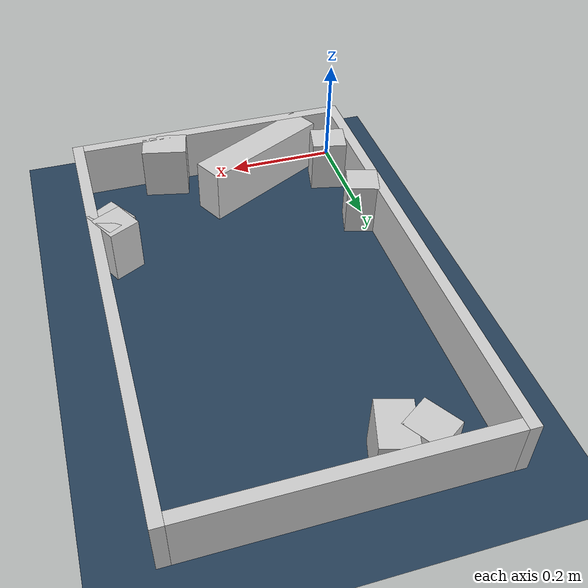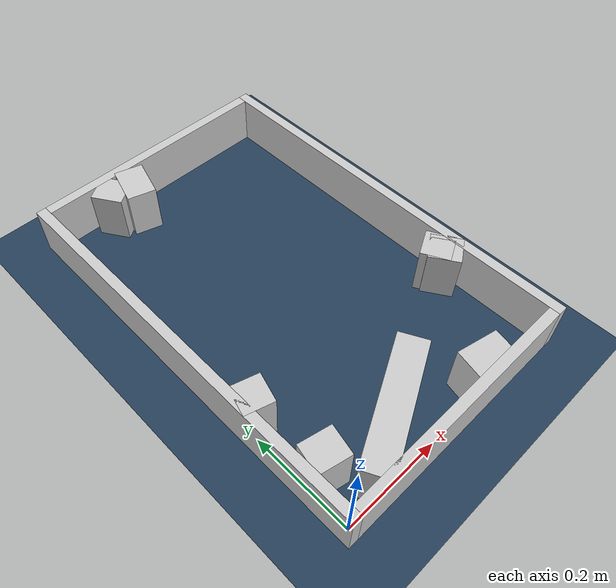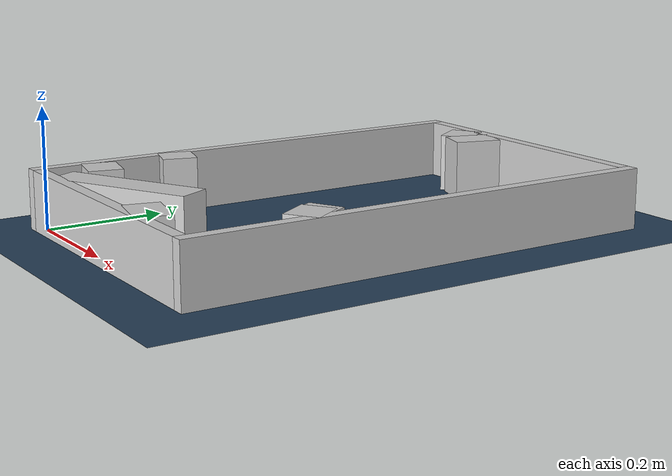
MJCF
<?xml version="1.0" ?>
<mujoco model="generated_real_template">
  <compiler angle="degree"/>
  <option timestep="0.002" integrator="implicitfast" iterations="100" cone="elliptic"/>
  <default>
    <geom density="1"/>
  </default>
  <asset>
    <texture builtin="gradient" height="3072" rgb1="0.3 0.5 0.7" rgb2="0 0 0" type="skybox" width="512"/>
    <texture builtin="checker" height="300" mark="edge" markrgb="0.8 0.8 0.8" name="groundplane" rgb1="0.2 0.3 0.4" rgb2="0.1 0.2 0.3" type="2d" width="300"/>
    <material name="groundplane" reflectance="0.2" texrepeat="5 5" texture="groundplane" texuniform="true"/>
  </asset>
  <worldbody>
    <light dir="0 0 -1" directional="true" pos="0 0 1.5"/>
    <geom name="floor" type="plane" condim="4" friction="0.5 0.005 0.001" material="groundplane" size="0 0 0.05"/>
    <body name="walls">
      <geom name="wall_boundary_left" type="box" condim="4" friction="1.0 0.005 0.0001" rgba="0.8 0.8 0.8 1" pos="-0.010000 0.387500 0.050000" euler="0 0 0.000000" size="0.010000 0.407500 0.050000"/>
      <geom name="wall_boundary_right" type="box" condim="4" friction="1.0 0.005 0.0001" rgba="0.8 0.8 0.8 1" pos="0.500000 0.387500 0.050000" euler="0 0 0.000000" size="0.010000 0.407500 0.050000"/>
      <geom name="wall_boundary_bottom" type="box" condim="4" friction="1.0 0.005 0.0001" rgba="0.8 0.8 0.8 1" pos="0.245000 -0.010000 0.050000" euler="0 0 0.000000" size="0.245000 0.010000 0.050000"/>
      <geom name="wall_boundary_top" type="box" condim="4" friction="1.0 0.005 0.0001" rgba="0.8 0.8 0.8 1" pos="0.245000 0.785000 0.050000" euler="0 0 0.000000" size="0.245000 0.010000 0.050000"/>
      <geom name="wall_inner_1_1" type="box" condim="4" friction="1.0 0.005 0.0001" rgba="0.8 0.8 0.8 1" pos="0.469273 0.204352 0.050000" euler="0 0 122.770243" size="0.030967 0.028500 0.050000"/>
      <geom name="wall_inner_1_2" type="box" condim="4" friction="1.0 0.005 0.0001" rgba="0.8 0.8 0.8 1" pos="0.118821 0.748768 0.050000" euler="0 0 122.770243" size="0.031197 0.028500 0.050000"/>
      <geom name="wall_inner_2_1" type="box" condim="4" friction="1.0 0.005 0.0001" rgba="0.8 0.8 0.8 1" pos="0.167939 0.063651 0.050000" euler="0 0 27.512018" size="0.126366 0.028500 0.050000"/>
      <geom name="wall_inner_2_2" type="box" condim="4" friction="1.0 0.005 0.0001" rgba="0.8 0.8 0.8 1" pos="0.464373 0.218044 0.050000" euler="0 0 27.512018" size="0.028895 0.028500 0.050000"/>
      <geom name="wall_inner_3_1" type="box" condim="4" friction="1.0 0.005 0.0001" rgba="0.8 0.8 0.8 1" pos="0.339810 0.016692 0.050000" euler="0 0 167.650858" size="0.041384 0.028500 0.050000"/>
      <geom name="wall_inner_3_2" type="box" condim="4" friction="1.0 0.005 0.0001" rgba="0.8 0.8 0.8 1" pos="0.031267 0.084243 0.050000" euler="0 0 167.650858" size="0.032008 0.028500 0.050000"/>
      <geom name="wall_inner_4_1" type="box" condim="4" friction="1.0 0.005 0.0001" rgba="0.8 0.8 0.8 1" pos="0.015394 0.226178 0.050000" euler="0 0 73.635528" size="0.028564 0.028500 0.050000"/>
      <geom name="wall_inner_4_2" type="box" condim="4" friction="1.0 0.005 0.0001" rgba="0.8 0.8 0.8 1" pos="0.165153 0.736180 0.050000" euler="0 0 73.635528" size="0.040459 0.028500 0.050000"/>
    </body>
  </worldbody>
</mujoco>
